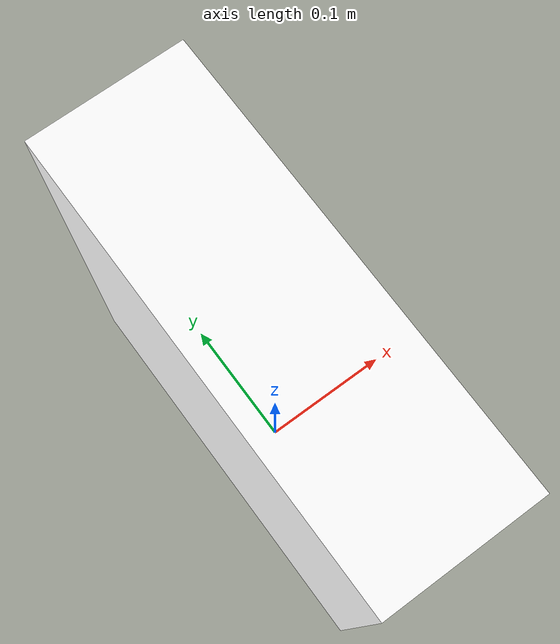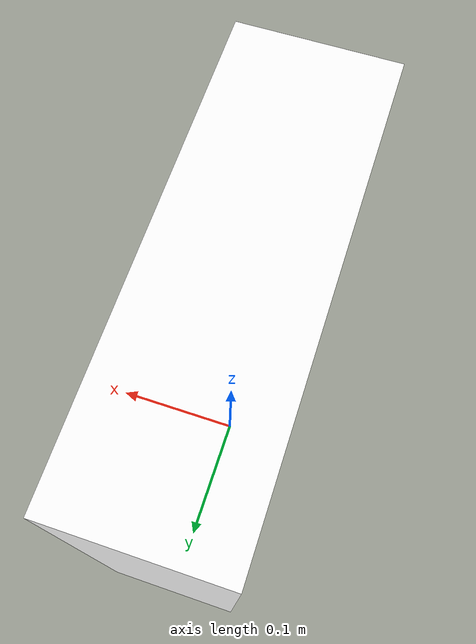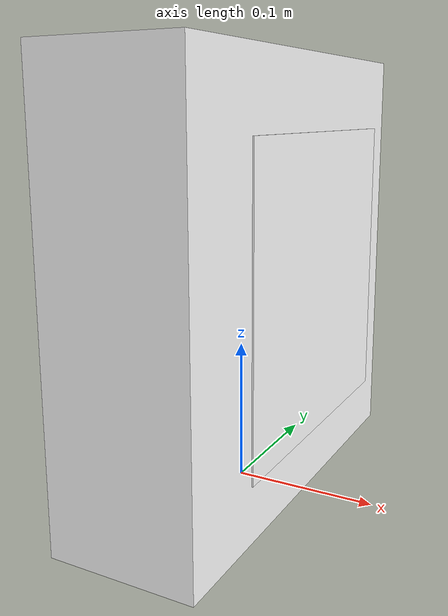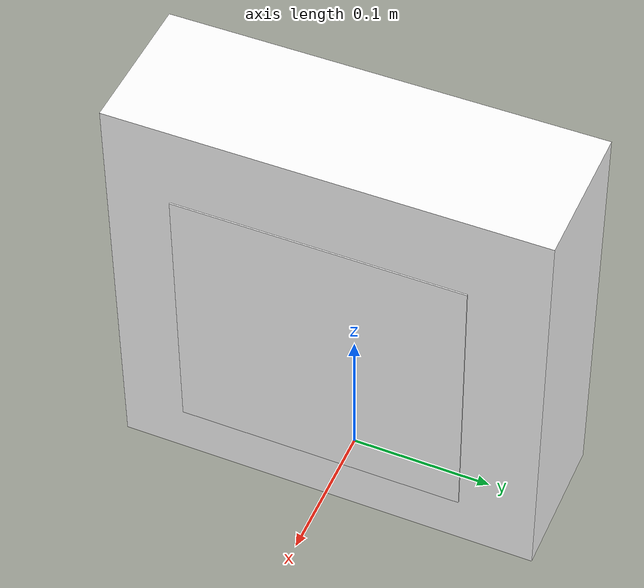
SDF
<?xml version="1.0"?>
<sdf version="1.8">
  <model name="aruco_4">
    <static>true</static>
    <link name="link">
      <visual name="board_visual">
        <pose>0.0 0 0.15 0 0 0</pose>
        <geometry>
          <box>
            <size>0.1 0.3 0.3</size>
          </box>
        </geometry>
        <material>
          <ambient>1 1 1 1</ambient>
          <diffuse>1 1 1 1</diffuse>
        </material>
      </visual>
      <collision name="board_collision">
        <pose>0.0 0 0.15 0 0 0</pose>
        <geometry>
          <box>
            <size>0.1 0.3 0.3</size>
          </box>
        </geometry>
      </collision>

      <visual name="marker_visual">
        <pose>0.06 0 0.15 0 0 0</pose>
        <geometry>
          <box>
            <size>0.001 0.2 0.2</size>
          </box>
        </geometry>
        <material>
          <diffuse>1 1 1 1</diffuse>
          <pbr>
            <metal>
              <albedo_map>textures/marker_50.png</albedo_map>
            </metal>
          </pbr>
        </material>
      </visual>
    </link>
  </model>
</sdf>
